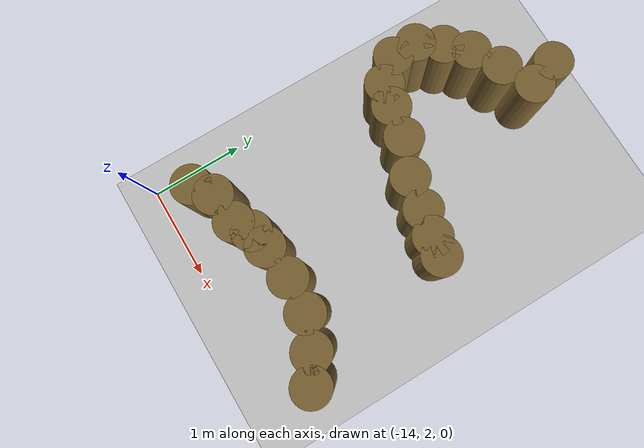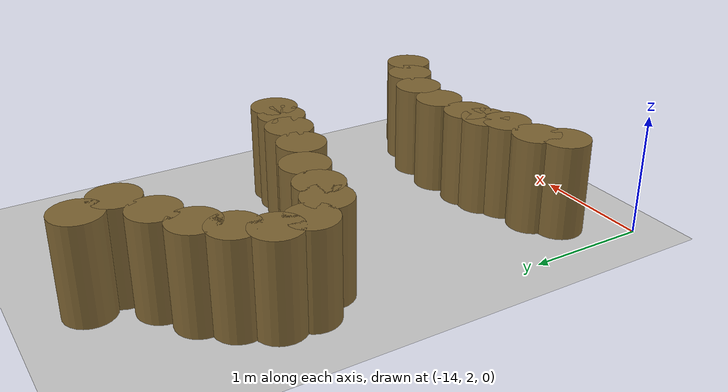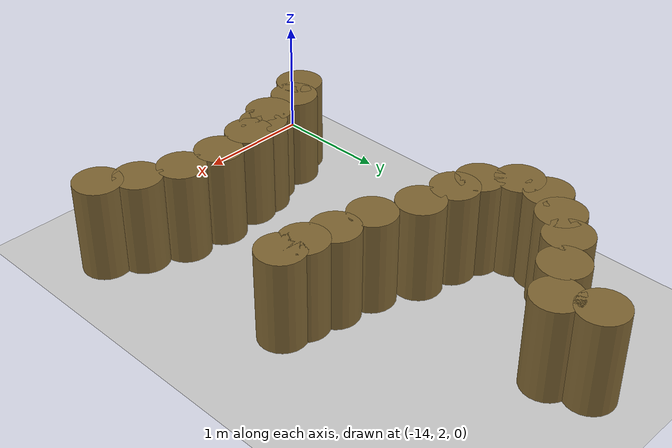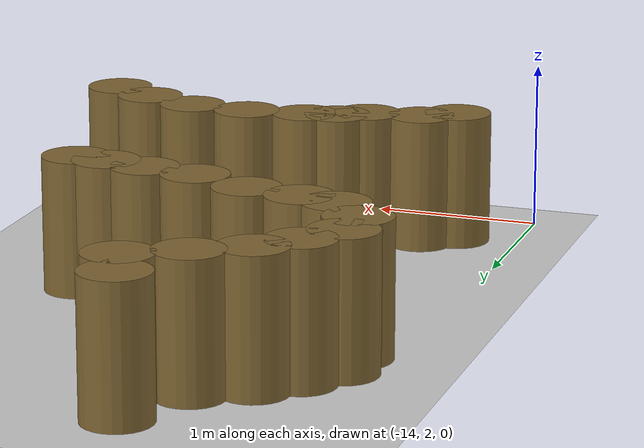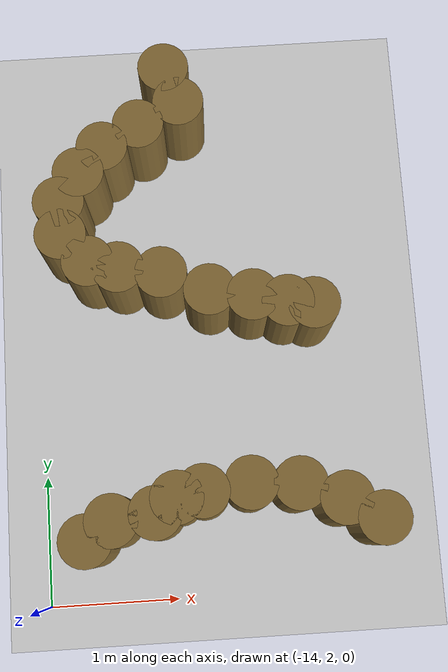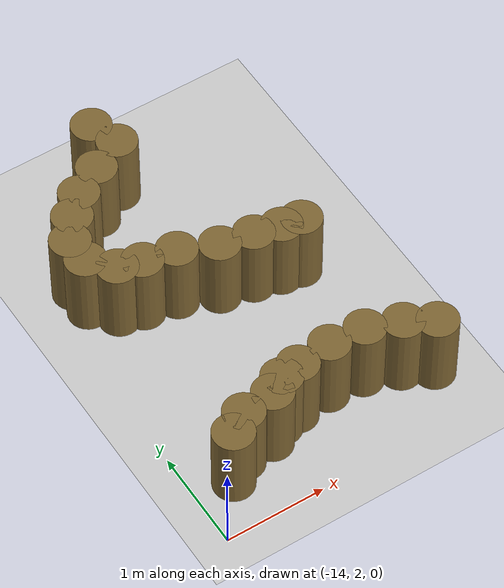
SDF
<sdf version="1.7">
 <world name="default">
  <model name="ground_plane">
   <static>1</static>
   <link name="link">
    <collision name="collision">
     <geometry><plane><normal>0 0 1</normal><size>100 100</size></plane></geometry>
     <surface><friction><ode><mu>100</mu><mu2>50</mu2></ode></friction></surface>
    </collision>
    <visual name="visual">
     <cast_shadows>0</cast_shadows>
     <geometry><plane><normal>0 0 1</normal><size>100 100</size></plane></geometry>
     <material>
      <script><uri>file://media/materials/scripts/gazebo.material</uri><name>Gazebo/Grey</name></script>
     </material>
    </visual>
   </link>
  </model>
  <model name="mini_cylinder_0_clone_0_clone_clone_clone_clone_3_clone_20_clone_18">
   <link name="link">
    <inertial>
     <mass>1</mass>
     <inertia><ixx>0.145833</ixx><ixy>0</ixy><ixz>0</ixz><iyy>0.145833</iyy><iyz>0</iyz><izz>0.125</izz></inertia>
    </inertial>
    <visual name="visual">
     <geometry><cylinder><radius>0.2</radius><length>0.8</length></cylinder></geometry>
     <material>
      <script><name>Gazebo/Grey</name><uri>file://media/materials/scripts/gazebo.material</uri></script>
      <shader type="vertex"><normal_map>__default__</normal_map></shader>
      <ambient>0.5 0.4 0.2 1</ambient>
      <diffuse>0.7 0.7 0.7 1</diffuse>
      <specular>0.01 0.01 0.01 1</specular>
      <emissive>0 0 0 1</emissive>
     </material>
    </visual>
    <collision name="collision">
     <geometry><cylinder><radius>0.2</radius><length>0.8</length></cylinder></geometry>
     <surface>
      <friction>
       <ode><mu>1</mu><mu2>1</mu2><fdir1>0 0 0</fdir1><slip1>0</slip1><slip2>0</slip2></ode>
       <torsional>
        <coefficient>1</coefficient>
        <patch_radius>0</patch_radius>
        <surface_radius>0</surface_radius>
        <use_patch_radius>1</use_patch_radius>
        <ode><slip>0</slip></ode>
       </torsional>
      </friction>
      <bounce><restitution_coefficient>0</restitution_coefficient><threshold>1e+06</threshold></bounce>
      <contact>
       <collide_without_contact>0</collide_without_contact>
       <collide_without_contact_bitmask>1</collide_without_contact_bitmask>
       <collide_bitmask>1</collide_bitmask>
       <ode>
        <soft_cfm>0</soft_cfm>
        <soft_erp>0.2</soft_erp>
        <kp>1e+13</kp>
        <kd>1</kd>
        <max_vel>0.01</max_vel>
        <min_depth>0</min_depth>
       </ode>
       <bullet>
        <split_impulse>1</split_impulse>
        <split_impulse_penetration_threshold>-0.01</split_impulse_penetration_threshold>
        <soft_cfm>0</soft_cfm>
        <soft_erp>0.2</soft_erp>
        <kp>1e+13</kp>
        <kd>1</kd>
       </bullet>
      </contact>
     </surface>
    </collision>
   </link>
   <static>1</static>
   <pose>-11.453 2.5165 0.4 0 -0 0</pose>
  </model>
  <model name="mini_cylinder_0_clone_0_clone_clone_clone_clone_3_clone_20_clone_19">
   <link name="link">
    <inertial>
     <mass>1</mass>
     <inertia><ixx>0.145833</ixx><ixy>0</ixy><ixz>0</ixz><iyy>0.145833</iyy><iyz>0</iyz><izz>0.125</izz></inertia>
    </inertial>
    <visual name="visual">
     <geometry><cylinder><radius>0.2</radius><length>0.8</length></cylinder></geometry>
     <material>
      <script><name>Gazebo/Grey</name><uri>file://media/materials/scripts/gazebo.material</uri></script>
      <shader type="vertex"><normal_map>__default__</normal_map></shader>
      <ambient>0.5 0.4 0.2 1</ambient>
      <diffuse>0.7 0.7 0.7 1</diffuse>
      <specular>0.01 0.01 0.01 1</specular>
      <emissive>0 0 0 1</emissive>
     </material>
    </visual>
    <collision name="collision">
     <geometry><cylinder><radius>0.2</radius><length>0.8</length></cylinder></geometry>
     <surface>
      <friction>
       <ode><mu>1</mu><mu2>1</mu2><fdir1>0 0 0</fdir1><slip1>0</slip1><slip2>0</slip2></ode>
       <torsional>
        <coefficient>1</coefficient>
        <patch_radius>0</patch_radius>
        <surface_radius>0</surface_radius>
        <use_patch_radius>1</use_patch_radius>
        <ode><slip>0</slip></ode>
       </torsional>
      </friction>
      <bounce><restitution_coefficient>0</restitution_coefficient><threshold>1e+06</threshold></bounce>
      <contact>
       <collide_without_contact>0</collide_without_contact>
       <collide_without_contact_bitmask>1</collide_without_contact_bitmask>
       <collide_bitmask>1</collide_bitmask>
       <ode>
        <soft_cfm>0</soft_cfm>
        <soft_erp>0.2</soft_erp>
        <kp>1e+13</kp>
        <kd>1</kd>
        <max_vel>0.01</max_vel>
        <min_depth>0</min_depth>
       </ode>
       <bullet>
        <split_impulse>1</split_impulse>
        <split_impulse_penetration_threshold>-0.01</split_impulse_penetration_threshold>
        <soft_cfm>0</soft_cfm>
        <soft_erp>0.2</soft_erp>
        <kp>1e+13</kp>
        <kd>1</kd>
       </bullet>
      </contact>
     </surface>
    </collision>
   </link>
   <static>1</static>
   <pose>-11.7157 2.67491 0.4 0 -0 0</pose>
  </model>
  <model name="mini_cylinder_0_clone_0_clone_clone_clone_clone_3_clone_20_clone_20">
   <link name="link">
    <inertial>
     <mass>1</mass>
     <inertia><ixx>0.145833</ixx><ixy>0</ixy><ixz>0</ixz><iyy>0.145833</iyy><iyz>0</iyz><izz>0.125</izz></inertia>
    </inertial>
    <visual name="visual">
     <geometry><cylinder><radius>0.2</radius><length>0.8</length></cylinder></geometry>
     <material>
      <script><name>Gazebo/Grey</name><uri>file://media/materials/scripts/gazebo.material</uri></script>
      <shader type="vertex"><normal_map>__default__</normal_map></shader>
      <ambient>0.5 0.4 0.2 1</ambient>
      <diffuse>0.7 0.7 0.7 1</diffuse>
      <specular>0.01 0.01 0.01 1</specular>
      <emissive>0 0 0 1</emissive>
     </material>
    </visual>
    <collision name="collision">
     <geometry><cylinder><radius>0.2</radius><length>0.8</length></cylinder></geometry>
     <surface>
      <friction>
       <ode><mu>1</mu><mu2>1</mu2><fdir1>0 0 0</fdir1><slip1>0</slip1><slip2>0</slip2></ode>
       <torsional>
        <coefficient>1</coefficient>
        <patch_radius>0</patch_radius>
        <surface_radius>0</surface_radius>
        <use_patch_radius>1</use_patch_radius>
        <ode><slip>0</slip></ode>
       </torsional>
      </friction>
      <bounce><restitution_coefficient>0</restitution_coefficient><threshold>1e+06</threshold></bounce>
      <contact>
       <collide_without_contact>0</collide_without_contact>
       <collide_without_contact_bitmask>1</collide_without_contact_bitmask>
       <collide_bitmask>1</collide_bitmask>
       <ode>
        <soft_cfm>0</soft_cfm>
        <soft_erp>0.2</soft_erp>
        <kp>1e+13</kp>
        <kd>1</kd>
        <max_vel>0.01</max_vel>
        <min_depth>0</min_depth>
       </ode>
       <bullet>
        <split_impulse>1</split_impulse>
        <split_impulse_penetration_threshold>-0.01</split_impulse_penetration_threshold>
        <soft_cfm>0</soft_cfm>
        <soft_erp>0.2</soft_erp>
        <kp>1e+13</kp>
        <kd>1</kd>
       </bullet>
      </contact>
     </surface>
    </collision>
   </link>
   <static>1</static>
   <pose>-12.0426 2.79993 0.4 0 -0 0</pose>
  </model>
  <model name="mini_cylinder_0_clone_0_clone_clone_clone_clone_3_clone_20_clone_21">
   <link name="link">
    <inertial>
     <mass>1</mass>
     <inertia><ixx>0.145833</ixx><ixy>0</ixy><ixz>0</ixz><iyy>0.145833</iyy><iyz>0</iyz><izz>0.125</izz></inertia>
    </inertial>
    <visual name="visual">
     <geometry><cylinder><radius>0.2</radius><length>0.8</length></cylinder></geometry>
     <material>
      <script><name>Gazebo/Grey</name><uri>file://media/materials/scripts/gazebo.material</uri></script>
      <shader type="vertex"><normal_map>__default__</normal_map></shader>
      <ambient>0.5 0.4 0.2 1</ambient>
      <diffuse>0.7 0.7 0.7 1</diffuse>
      <specular>0.01 0.01 0.01 1</specular>
      <emissive>0 0 0 1</emissive>
     </material>
    </visual>
    <collision name="collision">
     <geometry><cylinder><radius>0.2</radius><length>0.8</length></cylinder></geometry>
     <surface>
      <friction>
       <ode><mu>1</mu><mu2>1</mu2><fdir1>0 0 0</fdir1><slip1>0</slip1><slip2>0</slip2></ode>
       <torsional>
        <coefficient>1</coefficient>
        <patch_radius>0</patch_radius>
        <surface_radius>0</surface_radius>
        <use_patch_radius>1</use_patch_radius>
        <ode><slip>0</slip></ode>
       </torsional>
      </friction>
      <bounce><restitution_coefficient>0</restitution_coefficient><threshold>1e+06</threshold></bounce>
      <contact>
       <collide_without_contact>0</collide_without_contact>
       <collide_without_contact_bitmask>1</collide_without_contact_bitmask>
       <collide_bitmask>1</collide_bitmask>
       <ode>
        <soft_cfm>0</soft_cfm>
        <soft_erp>0.2</soft_erp>
        <kp>1e+13</kp>
        <kd>1</kd>
        <max_vel>0.01</max_vel>
        <min_depth>0</min_depth>
       </ode>
       <bullet>
        <split_impulse>1</split_impulse>
        <split_impulse_penetration_threshold>-0.01</split_impulse_penetration_threshold>
        <soft_cfm>0</soft_cfm>
        <soft_erp>0.2</soft_erp>
        <kp>1e+13</kp>
        <kd>1</kd>
       </bullet>
      </contact>
     </surface>
    </collision>
   </link>
   <static>1</static>
   <pose>-12.4008 2.82689 0.4 0 -0 0</pose>
  </model>
  <model name="mini_cylinder_0_clone_0_clone_clone_clone_clone_3_clone_20_clone_22">
   <link name="link">
    <inertial>
     <mass>1</mass>
     <inertia><ixx>0.145833</ixx><ixy>0</ixy><ixz>0</ixz><iyy>0.145833</iyy><iyz>0</iyz><izz>0.125</izz></inertia>
    </inertial>
    <visual name="visual">
     <geometry><cylinder><radius>0.2</radius><length>0.8</length></cylinder></geometry>
     <material>
      <script><name>Gazebo/Grey</name><uri>file://media/materials/scripts/gazebo.material</uri></script>
      <shader type="vertex"><normal_map>__default__</normal_map></shader>
      <ambient>0.5 0.4 0.2 1</ambient>
      <diffuse>0.7 0.7 0.7 1</diffuse>
      <specular>0.01 0.01 0.01 1</specular>
      <emissive>0 0 0 1</emissive>
     </material>
    </visual>
    <collision name="collision">
     <geometry><cylinder><radius>0.2</radius><length>0.8</length></cylinder></geometry>
     <surface>
      <friction>
       <ode><mu>1</mu><mu2>1</mu2><fdir1>0 0 0</fdir1><slip1>0</slip1><slip2>0</slip2></ode>
       <torsional>
        <coefficient>1</coefficient>
        <patch_radius>0</patch_radius>
        <surface_radius>0</surface_radius>
        <use_patch_radius>1</use_patch_radius>
        <ode><slip>0</slip></ode>
       </torsional>
      </friction>
      <bounce><restitution_coefficient>0</restitution_coefficient><threshold>1e+06</threshold></bounce>
      <contact>
       <collide_without_contact>0</collide_without_contact>
       <collide_without_contact_bitmask>1</collide_without_contact_bitmask>
       <collide_bitmask>1</collide_bitmask>
       <ode>
        <soft_cfm>0</soft_cfm>
        <soft_erp>0.2</soft_erp>
        <kp>1e+13</kp>
        <kd>1</kd>
        <max_vel>0.01</max_vel>
        <min_depth>0</min_depth>
       </ode>
       <bullet>
        <split_impulse>1</split_impulse>
        <split_impulse_penetration_threshold>-0.01</split_impulse_penetration_threshold>
        <soft_cfm>0</soft_cfm>
        <soft_erp>0.2</soft_erp>
        <kp>1e+13</kp>
        <kd>1</kd>
       </bullet>
      </contact>
     </surface>
    </collision>
   </link>
   <static>1</static>
   <pose>-12.7576 2.7888 0.4 0 -0 0</pose>
  </model>
  <model name="mini_cylinder_0_clone_0_clone_clone_clone_clone_3_clone_20_clone_23">
   <link name="link">
    <inertial>
     <mass>1</mass>
     <inertia><ixx>0.145833</ixx><ixy>0</ixy><ixz>0</ixz><iyy>0.145833</iyy><iyz>0</iyz><izz>0.125</izz></inertia>
    </inertial>
    <visual name="visual">
     <geometry><cylinder><radius>0.2</radius><length>0.8</length></cylinder></geometry>
     <material>
      <script><name>Gazebo/Grey</name><uri>file://media/materials/scripts/gazebo.material</uri></script>
      <shader type="vertex"><normal_map>__default__</normal_map></shader>
      <ambient>0.5 0.4 0.2 1</ambient>
      <diffuse>0.7 0.7 0.7 1</diffuse>
      <specular>0.01 0.01 0.01 1</specular>
      <emissive>0 0 0 1</emissive>
     </material>
    </visual>
    <collision name="collision">
     <geometry><cylinder><radius>0.2</radius><length>0.8</length></cylinder></geometry>
     <surface>
      <friction>
       <ode><mu>1</mu><mu2>1</mu2><fdir1>0 0 0</fdir1><slip1>0</slip1><slip2>0</slip2></ode>
       <torsional>
        <coefficient>1</coefficient>
        <patch_radius>0</patch_radius>
        <surface_radius>0</surface_radius>
        <use_patch_radius>1</use_patch_radius>
        <ode><slip>0</slip></ode>
       </torsional>
      </friction>
      <bounce><restitution_coefficient>0</restitution_coefficient><threshold>1e+06</threshold></bounce>
      <contact>
       <collide_without_contact>0</collide_without_contact>
       <collide_without_contact_bitmask>1</collide_without_contact_bitmask>
       <collide_bitmask>1</collide_bitmask>
       <ode>
        <soft_cfm>0</soft_cfm>
        <soft_erp>0.2</soft_erp>
        <kp>1e+13</kp>
        <kd>1</kd>
        <max_vel>0.01</max_vel>
        <min_depth>0</min_depth>
       </ode>
       <bullet>
        <split_impulse>1</split_impulse>
        <split_impulse_penetration_threshold>-0.01</split_impulse_penetration_threshold>
        <soft_cfm>0</soft_cfm>
        <soft_erp>0.2</soft_erp>
        <kp>1e+13</kp>
        <kd>1</kd>
       </bullet>
      </contact>
     </surface>
    </collision>
   </link>
   <static>1</static>
   <pose>-13.1132 2.65293 0.4 0 -0 0</pose>
  </model>
  <model name="mini_cylinder_0_clone_0_clone_clone_clone_clone_3_clone_20_clone_24">
   <link name="link">
    <inertial>
     <mass>1</mass>
     <inertia><ixx>0.145833</ixx><ixy>0</ixy><ixz>0</ixz><iyy>0.145833</iyy><iyz>0</iyz><izz>0.125</izz></inertia>
    </inertial>
    <visual name="visual">
     <geometry><cylinder><radius>0.2</radius><length>0.8</length></cylinder></geometry>
     <material>
      <script><name>Gazebo/Grey</name><uri>file://media/materials/scripts/gazebo.material</uri></script>
      <shader type="vertex"><normal_map>__default__</normal_map></shader>
      <ambient>0.5 0.4 0.2 1</ambient>
      <diffuse>0.7 0.7 0.7 1</diffuse>
      <specular>0.01 0.01 0.01 1</specular>
      <emissive>0 0 0 1</emissive>
     </material>
    </visual>
    <collision name="collision">
     <geometry><cylinder><radius>0.2</radius><length>0.8</length></cylinder></geometry>
     <surface>
      <friction>
       <ode><mu>1</mu><mu2>1</mu2><fdir1>0 0 0</fdir1><slip1>0</slip1><slip2>0</slip2></ode>
       <torsional>
        <coefficient>1</coefficient>
        <patch_radius>0</patch_radius>
        <surface_radius>0</surface_radius>
        <use_patch_radius>1</use_patch_radius>
        <ode><slip>0</slip></ode>
       </torsional>
      </friction>
      <bounce><restitution_coefficient>0</restitution_coefficient><threshold>1e+06</threshold></bounce>
      <contact>
       <collide_without_contact>0</collide_without_contact>
       <collide_without_contact_bitmask>1</collide_without_contact_bitmask>
       <collide_bitmask>1</collide_bitmask>
       <ode>
        <soft_cfm>0</soft_cfm>
        <soft_erp>0.2</soft_erp>
        <kp>1e+13</kp>
        <kd>1</kd>
        <max_vel>0.01</max_vel>
        <min_depth>0</min_depth>
       </ode>
       <bullet>
        <split_impulse>1</split_impulse>
        <split_impulse_penetration_threshold>-0.01</split_impulse_penetration_threshold>
        <soft_cfm>0</soft_cfm>
        <soft_erp>0.2</soft_erp>
        <kp>1e+13</kp>
        <kd>1</kd>
       </bullet>
      </contact>
     </surface>
    </collision>
   </link>
   <static>1</static>
   <pose>-13.4377 2.61527 0.4 0 -0 0</pose>
  </model>
  <model name="mini_cylinder_0_clone_0_clone_clone_clone_clone_3_clone_20_clone_25">
   <link name="link">
    <inertial>
     <mass>1</mass>
     <inertia><ixx>0.145833</ixx><ixy>0</ixy><ixz>0</ixz><iyy>0.145833</iyy><iyz>0</iyz><izz>0.125</izz></inertia>
    </inertial>
    <visual name="visual">
     <geometry><cylinder><radius>0.2</radius><length>0.8</length></cylinder></geometry>
     <material>
      <script><name>Gazebo/Grey</name><uri>file://media/materials/scripts/gazebo.material</uri></script>
      <shader type="vertex"><normal_map>__default__</normal_map></shader>
      <ambient>0.5 0.4 0.2 1</ambient>
      <diffuse>0.7 0.7 0.7 1</diffuse>
      <specular>0.01 0.01 0.01 1</specular>
      <emissive>0 0 0 1</emissive>
     </material>
    </visual>
    <collision name="collision">
     <geometry><cylinder><radius>0.2</radius><length>0.8</length></cylinder></geometry>
     <surface>
      <friction>
       <ode><mu>1</mu><mu2>1</mu2><fdir1>0 0 0</fdir1><slip1>0</slip1><slip2>0</slip2></ode>
       <torsional>
        <coefficient>1</coefficient>
        <patch_radius>0</patch_radius>
        <surface_radius>0</surface_radius>
        <use_patch_radius>1</use_patch_radius>
        <ode><slip>0</slip></ode>
       </torsional>
      </friction>
      <bounce><restitution_coefficient>0</restitution_coefficient><threshold>1e+06</threshold></bounce>
      <contact>
       <collide_without_contact>0</collide_without_contact>
       <collide_without_contact_bitmask>1</collide_without_contact_bitmask>
       <collide_bitmask>1</collide_bitmask>
       <ode>
        <soft_cfm>0</soft_cfm>
        <soft_erp>0.2</soft_erp>
        <kp>1e+13</kp>
        <kd>1</kd>
        <max_vel>0.01</max_vel>
        <min_depth>0</min_depth>
       </ode>
       <bullet>
        <split_impulse>1</split_impulse>
        <split_impulse_penetration_threshold>-0.01</split_impulse_penetration_threshold>
        <soft_cfm>0</soft_cfm>
        <soft_erp>0.2</soft_erp>
        <kp>1e+13</kp>
        <kd>1</kd>
       </bullet>
      </contact>
     </surface>
    </collision>
   </link>
   <static>1</static>
   <pose>-13.6303 2.482 0.4 0 -0 0</pose>
  </model>
  <model name="mini_cylinder_0_clone_0_clone_clone_clone_clone_3_clone_20_clone_37">
   <link name="link">
    <inertial>
     <mass>1</mass>
     <inertia><ixx>0.145833</ixx><ixy>0</ixy><ixz>0</ixz><iyy>0.145833</iyy><iyz>0</iyz><izz>0.125</izz></inertia>
    </inertial>
    <visual name="visual">
     <geometry><cylinder><radius>0.2</radius><length>0.8</length></cylinder></geometry>
     <material>
      <script><name>Gazebo/Grey</name><uri>file://media/materials/scripts/gazebo.material</uri></script>
      <shader type="vertex"><normal_map>__default__</normal_map></shader>
      <ambient>0.5 0.4 0.2 1</ambient>
      <diffuse>0.7 0.7 0.7 1</diffuse>
      <specular>0.01 0.01 0.01 1</specular>
      <emissive>0 0 0 1</emissive>
     </material>
    </visual>
    <collision name="collision">
     <geometry><cylinder><radius>0.2</radius><length>0.8</length></cylinder></geometry>
     <surface>
      <friction>
       <ode><mu>1</mu><mu2>1</mu2><fdir1>0 0 0</fdir1><slip1>0</slip1><slip2>0</slip2></ode>
       <torsional>
        <coefficient>1</coefficient>
        <patch_radius>0</patch_radius>
        <surface_radius>0</surface_radius>
        <use_patch_radius>1</use_patch_radius>
        <ode><slip>0</slip></ode>
       </torsional>
      </friction>
      <bounce><restitution_coefficient>0</restitution_coefficient><threshold>1e+06</threshold></bounce>
      <contact>
       <collide_without_contact>0</collide_without_contact>
       <collide_without_contact_bitmask>1</collide_without_contact_bitmask>
       <collide_bitmask>1</collide_bitmask>
       <ode>
        <soft_cfm>0</soft_cfm>
        <soft_erp>0.2</soft_erp>
        <kp>1e+13</kp>
        <kd>1</kd>
        <max_vel>0.01</max_vel>
        <min_depth>0</min_depth>
       </ode>
       <bullet>
        <split_impulse>1</split_impulse>
        <split_impulse_penetration_threshold>-0.01</split_impulse_penetration_threshold>
        <soft_cfm>0</soft_cfm>
        <soft_erp>0.2</soft_erp>
        <kp>1e+13</kp>
        <kd>1</kd>
       </bullet>
      </contact>
     </surface>
    </collision>
   </link>
   <static>1</static>
   <pose>-12.9523 2.75298 0.4 0 -0 0</pose>
  </model>
  <model name="mini_cylinder_0_clone_0_clone_clone_clone_clone_3_clone_20_clone_40">
   <link name="link">
    <inertial>
     <mass>1</mass>
     <inertia><ixx>0.145833</ixx><ixy>0</ixy><ixz>0</ixz><iyy>0.145833</iyy><iyz>0</iyz><izz>0.125</izz></inertia>
    </inertial>
    <visual name="visual">
     <geometry><cylinder><radius>0.2</radius><length>0.8</length></cylinder></geometry>
     <material>
      <script><name>Gazebo/Grey</name><uri>file://media/materials/scripts/gazebo.material</uri></script>
      <shader type="vertex"><normal_map>__default__</normal_map></shader>
      <ambient>0.5 0.4 0.2 1</ambient>
      <diffuse>0.7 0.7 0.7 1</diffuse>
      <specular>0.01 0.01 0.01 1</specular>
      <emissive>0 0 0 1</emissive>
     </material>
    </visual>
    <collision name="collision">
     <geometry><cylinder><radius>0.2</radius><length>0.8</length></cylinder></geometry>
     <surface>
      <friction>
       <ode><mu>1</mu><mu2>1</mu2><fdir1>0 0 0</fdir1><slip1>0</slip1><slip2>0</slip2></ode>
       <torsional>
        <coefficient>1</coefficient>
        <patch_radius>0</patch_radius>
        <surface_radius>0</surface_radius>
        <use_patch_radius>1</use_patch_radius>
        <ode><slip>0</slip></ode>
       </torsional>
      </friction>
      <bounce><restitution_coefficient>0</restitution_coefficient><threshold>1e+06</threshold></bounce>
      <contact>
       <collide_without_contact>0</collide_without_contact>
       <collide_without_contact_bitmask>1</collide_without_contact_bitmask>
       <collide_bitmask>1</collide_bitmask>
       <ode>
        <soft_cfm>0</soft_cfm>
        <soft_erp>0.2</soft_erp>
        <kp>1e+13</kp>
        <kd>1</kd>
        <max_vel>0.01</max_vel>
        <min_depth>0</min_depth>
       </ode>
       <bullet>
        <split_impulse>1</split_impulse>
        <split_impulse_penetration_threshold>-0.01</split_impulse_penetration_threshold>
        <soft_cfm>0</soft_cfm>
        <soft_erp>0.2</soft_erp>
        <kp>1e+13</kp>
        <kd>1</kd>
       </bullet>
      </contact>
     </surface>
    </collision>
   </link>
   <static>1</static>
   <pose>-11.8364 4.13701 0.4 0 -0 0</pose>
  </model>
  <model name="mini_cylinder_0_clone_0_clone_clone_clone_clone_3_clone_20_clone_41">
   <link name="link">
    <inertial>
     <mass>1</mass>
     <inertia><ixx>0.145833</ixx><ixy>0</ixy><ixz>0</ixz><iyy>0.145833</iyy><iyz>0</iyz><izz>0.125</izz></inertia>
    </inertial>
    <visual name="visual">
     <geometry><cylinder><radius>0.2</radius><length>0.8</length></cylinder></geometry>
     <material>
      <script><name>Gazebo/Grey</name><uri>file://media/materials/scripts/gazebo.material</uri></script>
      <shader type="vertex"><normal_map>__default__</normal_map></shader>
      <ambient>0.5 0.4 0.2 1</ambient>
      <diffuse>0.7 0.7 0.7 1</diffuse>
      <specular>0.01 0.01 0.01 1</specular>
      <emissive>0 0 0 1</emissive>
     </material>
    </visual>
    <collision name="collision">
     <geometry><cylinder><radius>0.2</radius><length>0.8</length></cylinder></geometry>
     <surface>
      <friction>
       <ode><mu>1</mu><mu2>1</mu2><fdir1>0 0 0</fdir1><slip1>0</slip1><slip2>0</slip2></ode>
       <torsional>
        <coefficient>1</coefficient>
        <patch_radius>0</patch_radius>
        <surface_radius>0</surface_radius>
        <use_patch_radius>1</use_patch_radius>
        <ode><slip>0</slip></ode>
       </torsional>
      </friction>
      <bounce><restitution_coefficient>0</restitution_coefficient><threshold>1e+06</threshold></bounce>
      <contact>
       <collide_without_contact>0</collide_without_contact>
       <collide_without_contact_bitmask>1</collide_without_contact_bitmask>
       <collide_bitmask>1</collide_bitmask>
       <ode>
        <soft_cfm>0</soft_cfm>
        <soft_erp>0.2</soft_erp>
        <kp>1e+13</kp>
        <kd>1</kd>
        <max_vel>0.01</max_vel>
        <min_depth>0</min_depth>
       </ode>
       <bullet>
        <split_impulse>1</split_impulse>
        <split_impulse_penetration_threshold>-0.01</split_impulse_penetration_threshold>
        <soft_cfm>0</soft_cfm>
        <soft_erp>0.2</soft_erp>
        <kp>1e+13</kp>
        <kd>1</kd>
       </bullet>
      </contact>
     </surface>
    </collision>
   </link>
   <static>1</static>
   <pose>-12.0326 4.16648 0.4 0 -0 0</pose>
  </model>
  <model name="mini_cylinder_0_clone_0_clone_clone_clone_clone_3_clone_20_clone_42">
   <link name="link">
    <inertial>
     <mass>1</mass>
     <inertia><ixx>0.145833</ixx><ixy>0</ixy><ixz>0</ixz><iyy>0.145833</iyy><iyz>0</iyz><izz>0.125</izz></inertia>
    </inertial>
    <visual name="visual">
     <geometry><cylinder><radius>0.2</radius><length>0.8</length></cylinder></geometry>
     <material>
      <script><name>Gazebo/Grey</name><uri>file://media/materials/scripts/gazebo.material</uri></script>
      <shader type="vertex"><normal_map>__default__</normal_map></shader>
      <ambient>0.5 0.4 0.2 1</ambient>
      <diffuse>0.7 0.7 0.7 1</diffuse>
      <specular>0.01 0.01 0.01 1</specular>
      <emissive>0 0 0 1</emissive>
     </material>
    </visual>
    <collision name="collision">
     <geometry><cylinder><radius>0.2</radius><length>0.8</length></cylinder></geometry>
     <surface>
      <friction>
       <ode><mu>1</mu><mu2>1</mu2><fdir1>0 0 0</fdir1><slip1>0</slip1><slip2>0</slip2></ode>
       <torsional>
        <coefficient>1</coefficient>
        <patch_radius>0</patch_radius>
        <surface_radius>0</surface_radius>
        <use_patch_radius>1</use_patch_radius>
        <ode><slip>0</slip></ode>
       </torsional>
      </friction>
      <bounce><restitution_coefficient>0</restitution_coefficient><threshold>1e+06</threshold></bounce>
      <contact>
       <collide_without_contact>0</collide_without_contact>
       <collide_without_contact_bitmask>1</collide_without_contact_bitmask>
       <collide_bitmask>1</collide_bitmask>
       <ode>
        <soft_cfm>0</soft_cfm>
        <soft_erp>0.2</soft_erp>
        <kp>1e+13</kp>
        <kd>1</kd>
        <max_vel>0.01</max_vel>
        <min_depth>0</min_depth>
       </ode>
       <bullet>
        <split_impulse>1</split_impulse>
        <split_impulse_penetration_threshold>-0.01</split_impulse_penetration_threshold>
        <soft_cfm>0</soft_cfm>
        <soft_erp>0.2</soft_erp>
        <kp>1e+13</kp>
        <kd>1</kd>
       </bullet>
      </contact>
     </surface>
    </collision>
   </link>
   <static>1</static>
   <pose>-12.2932 4.2275 0.4 0 -0 0</pose>
  </model>
  <model name="mini_cylinder_0_clone_0_clone_clone_clone_clone_3_clone_20_clone_43">
   <link name="link">
    <inertial>
     <mass>1</mass>
     <inertia><ixx>0.145833</ixx><ixy>0</ixy><ixz>0</ixz><iyy>0.145833</iyy><iyz>0</iyz><izz>0.125</izz></inertia>
    </inertial>
    <visual name="visual">
     <geometry><cylinder><radius>0.2</radius><length>0.8</length></cylinder></geometry>
     <material>
      <script><name>Gazebo/Grey</name><uri>file://media/materials/scripts/gazebo.material</uri></script>
      <shader type="vertex"><normal_map>__default__</normal_map></shader>
      <ambient>0.5 0.4 0.2 1</ambient>
      <diffuse>0.7 0.7 0.7 1</diffuse>
      <specular>0.01 0.01 0.01 1</specular>
      <emissive>0 0 0 1</emissive>
     </material>
    </visual>
    <collision name="collision">
     <geometry><cylinder><radius>0.2</radius><length>0.8</length></cylinder></geometry>
     <surface>
      <friction>
       <ode><mu>1</mu><mu2>1</mu2><fdir1>0 0 0</fdir1><slip1>0</slip1><slip2>0</slip2></ode>
       <torsional>
        <coefficient>1</coefficient>
        <patch_radius>0</patch_radius>
        <surface_radius>0</surface_radius>
        <use_patch_radius>1</use_patch_radius>
        <ode><slip>0</slip></ode>
       </torsional>
      </friction>
      <bounce><restitution_coefficient>0</restitution_coefficient><threshold>1e+06</threshold></bounce>
      <contact>
       <collide_without_contact>0</collide_without_contact>
       <collide_without_contact_bitmask>1</collide_without_contact_bitmask>
       <collide_bitmask>1</collide_bitmask>
       <ode>
        <soft_cfm>0</soft_cfm>
        <soft_erp>0.2</soft_erp>
        <kp>1e+13</kp>
        <kd>1</kd>
        <max_vel>0.01</max_vel>
        <min_depth>0</min_depth>
       </ode>
       <bullet>
        <split_impulse>1</split_impulse>
        <split_impulse_penetration_threshold>-0.01</split_impulse_penetration_threshold>
        <soft_cfm>0</soft_cfm>
        <soft_erp>0.2</soft_erp>
        <kp>1e+13</kp>
        <kd>1</kd>
       </bullet>
      </contact>
     </surface>
    </collision>
   </link>
   <static>1</static>
   <pose>-12.6192 4.28741 0.4 0 -0 0</pose>
  </model>
  <model name="mini_cylinder_0_clone_0_clone_clone_clone_clone_3_clone_20_clone_44">
   <link name="link">
    <inertial>
     <mass>1</mass>
     <inertia><ixx>0.145833</ixx><ixy>0</ixy><ixz>0</ixz><iyy>0.145833</iyy><iyz>0</iyz><izz>0.125</izz></inertia>
    </inertial>
    <visual name="visual">
     <geometry><cylinder><radius>0.2</radius><length>0.8</length></cylinder></geometry>
     <material>
      <script><name>Gazebo/Grey</name><uri>file://media/materials/scripts/gazebo.material</uri></script>
      <shader type="vertex"><normal_map>__default__</normal_map></shader>
      <ambient>0.5 0.4 0.2 1</ambient>
      <diffuse>0.7 0.7 0.7 1</diffuse>
      <specular>0.01 0.01 0.01 1</specular>
      <emissive>0 0 0 1</emissive>
     </material>
    </visual>
    <collision name="collision">
     <geometry><cylinder><radius>0.2</radius><length>0.8</length></cylinder></geometry>
     <surface>
      <friction>
       <ode><mu>1</mu><mu2>1</mu2><fdir1>0 0 0</fdir1><slip1>0</slip1><slip2>0</slip2></ode>
       <torsional>
        <coefficient>1</coefficient>
        <patch_radius>0</patch_radius>
        <surface_radius>0</surface_radius>
        <use_patch_radius>1</use_patch_radius>
        <ode><slip>0</slip></ode>
       </torsional>
      </friction>
      <bounce><restitution_coefficient>0</restitution_coefficient><threshold>1e+06</threshold></bounce>
      <contact>
       <collide_without_contact>0</collide_without_contact>
       <collide_without_contact_bitmask>1</collide_without_contact_bitmask>
       <collide_bitmask>1</collide_bitmask>
       <ode>
        <soft_cfm>0</soft_cfm>
        <soft_erp>0.2</soft_erp>
        <kp>1e+13</kp>
        <kd>1</kd>
        <max_vel>0.01</max_vel>
        <min_depth>0</min_depth>
       </ode>
       <bullet>
        <split_impulse>1</split_impulse>
        <split_impulse_penetration_threshold>-0.01</split_impulse_penetration_threshold>
        <soft_cfm>0</soft_cfm>
        <soft_erp>0.2</soft_erp>
        <kp>1e+13</kp>
        <kd>1</kd>
       </bullet>
      </contact>
     </surface>
    </collision>
   </link>
   <static>1</static>
   <pose>-12.9796 4.44444 0.4 0 -0 0</pose>
  </model>
  <model name="mini_cylinder_0_clone_0_clone_clone_clone_clone_3_clone_20_clone_45">
   <link name="link">
    <inertial>
     <mass>1</mass>
     <inertia><ixx>0.145833</ixx><ixy>0</ixy><ixz>0</ixz><iyy>0.145833</iyy><iyz>0</iyz><izz>0.125</izz></inertia>
    </inertial>
    <visual name="visual">
     <geometry><cylinder><radius>0.2</radius><length>0.8</length></cylinder></geometry>
     <material>
      <script><name>Gazebo/Grey</name><uri>file://media/materials/scripts/gazebo.material</uri></script>
      <shader type="vertex"><normal_map>__default__</normal_map></shader>
      <ambient>0.5 0.4 0.2 1</ambient>
      <diffuse>0.7 0.7 0.7 1</diffuse>
      <specular>0.01 0.01 0.01 1</specular>
      <emissive>0 0 0 1</emissive>
     </material>
    </visual>
    <collision name="collision">
     <geometry><cylinder><radius>0.2</radius><length>0.8</length></cylinder></geometry>
     <surface>
      <friction>
       <ode><mu>1</mu><mu2>1</mu2><fdir1>0 0 0</fdir1><slip1>0</slip1><slip2>0</slip2></ode>
       <torsional>
        <coefficient>1</coefficient>
        <patch_radius>0</patch_radius>
        <surface_radius>0</surface_radius>
        <use_patch_radius>1</use_patch_radius>
        <ode><slip>0</slip></ode>
       </torsional>
      </friction>
      <bounce><restitution_coefficient>0</restitution_coefficient><threshold>1e+06</threshold></bounce>
      <contact>
       <collide_without_contact>0</collide_without_contact>
       <collide_without_contact_bitmask>1</collide_without_contact_bitmask>
       <collide_bitmask>1</collide_bitmask>
       <ode>
        <soft_cfm>0</soft_cfm>
        <soft_erp>0.2</soft_erp>
        <kp>1e+13</kp>
        <kd>1</kd>
        <max_vel>0.01</max_vel>
        <min_depth>0</min_depth>
       </ode>
       <bullet>
        <split_impulse>1</split_impulse>
        <split_impulse_penetration_threshold>-0.01</split_impulse_penetration_threshold>
        <soft_cfm>0</soft_cfm>
        <soft_erp>0.2</soft_erp>
        <kp>1e+13</kp>
        <kd>1</kd>
       </bullet>
      </contact>
     </surface>
    </collision>
   </link>
   <static>1</static>
   <pose>-13.3056 4.50446 0.4 0 -0 0</pose>
  </model>
  <model name="mini_cylinder_0_clone_0_clone_clone_clone_clone_3_clone_20_clone_46">
   <link name="link">
    <inertial>
     <mass>1</mass>
     <inertia><ixx>0.145833</ixx><ixy>0</ixy><ixz>0</ixz><iyy>0.145833</iyy><iyz>0</iyz><izz>0.125</izz></inertia>
    </inertial>
    <visual name="visual">
     <geometry><cylinder><radius>0.2</radius><length>0.8</length></cylinder></geometry>
     <material>
      <script><name>Gazebo/Grey</name><uri>file://media/materials/scripts/gazebo.material</uri></script>
      <shader type="vertex"><normal_map>__default__</normal_map></shader>
      <ambient>0.5 0.4 0.2 1</ambient>
      <diffuse>0.7 0.7 0.7 1</diffuse>
      <specular>0.01 0.01 0.01 1</specular>
      <emissive>0 0 0 1</emissive>
     </material>
    </visual>
    <collision name="collision">
     <geometry><cylinder><radius>0.2</radius><length>0.8</length></cylinder></geometry>
     <surface>
      <friction>
       <ode><mu>1</mu><mu2>1</mu2><fdir1>0 0 0</fdir1><slip1>0</slip1><slip2>0</slip2></ode>
       <torsional>
        <coefficient>1</coefficient>
        <patch_radius>0</patch_radius>
        <surface_radius>0</surface_radius>
        <use_patch_radius>1</use_patch_radius>
        <ode><slip>0</slip></ode>
       </torsional>
      </friction>
      <bounce><restitution_coefficient>0</restitution_coefficient><threshold>1e+06</threshold></bounce>
      <contact>
       <collide_without_contact>0</collide_without_contact>
       <collide_without_contact_bitmask>1</collide_without_contact_bitmask>
       <collide_bitmask>1</collide_bitmask>
       <ode>
        <soft_cfm>0</soft_cfm>
        <soft_erp>0.2</soft_erp>
        <kp>1e+13</kp>
        <kd>1</kd>
        <max_vel>0.01</max_vel>
        <min_depth>0</min_depth>
       </ode>
       <bullet>
        <split_impulse>1</split_impulse>
        <split_impulse_penetration_threshold>-0.01</split_impulse_penetration_threshold>
        <soft_cfm>0</soft_cfm>
        <soft_erp>0.2</soft_erp>
        <kp>1e+13</kp>
        <kd>1</kd>
       </bullet>
      </contact>
     </surface>
    </collision>
   </link>
   <static>1</static>
   <pose>-13.534 4.56588 0.4 0 -0 0</pose>
  </model>
  <model name="mini_cylinder_0_clone_0_clone_clone_clone_clone_3_clone_20_clone_47">
   <link name="link">
    <inertial>
     <mass>1</mass>
     <inertia><ixx>0.145833</ixx><ixy>0</ixy><ixz>0</ixz><iyy>0.145833</iyy><iyz>0</iyz><izz>0.125</izz></inertia>
    </inertial>
    <visual name="visual">
     <geometry><cylinder><radius>0.2</radius><length>0.8</length></cylinder></geometry>
     <material>
      <script><name>Gazebo/Grey</name><uri>file://media/materials/scripts/gazebo.material</uri></script>
      <shader type="vertex"><normal_map>__default__</normal_map></shader>
      <ambient>0.5 0.4 0.2 1</ambient>
      <diffuse>0.7 0.7 0.7 1</diffuse>
      <specular>0.01 0.01 0.01 1</specular>
      <emissive>0 0 0 1</emissive>
     </material>
    </visual>
    <collision name="collision">
     <geometry><cylinder><radius>0.2</radius><length>0.8</length></cylinder></geometry>
     <surface>
      <friction>
       <ode><mu>1</mu><mu2>1</mu2><fdir1>0 0 0</fdir1><slip1>0</slip1><slip2>0</slip2></ode>
       <torsional>
        <coefficient>1</coefficient>
        <patch_radius>0</patch_radius>
        <surface_radius>0</surface_radius>
        <use_patch_radius>1</use_patch_radius>
        <ode><slip>0</slip></ode>
       </torsional>
      </friction>
      <bounce><restitution_coefficient>0</restitution_coefficient><threshold>1e+06</threshold></bounce>
      <contact>
       <collide_without_contact>0</collide_without_contact>
       <collide_without_contact_bitmask>1</collide_without_contact_bitmask>
       <collide_bitmask>1</collide_bitmask>
       <ode>
        <soft_cfm>0</soft_cfm>
        <soft_erp>0.2</soft_erp>
        <kp>1e+13</kp>
        <kd>1</kd>
        <max_vel>0.01</max_vel>
        <min_depth>0</min_depth>
       </ode>
       <bullet>
        <split_impulse>1</split_impulse>
        <split_impulse_penetration_threshold>-0.01</split_impulse_penetration_threshold>
        <soft_cfm>0</soft_cfm>
        <soft_erp>0.2</soft_erp>
        <kp>1e+13</kp>
        <kd>1</kd>
       </bullet>
      </contact>
     </surface>
    </collision>
   </link>
   <static>1</static>
   <pose>-13.7328 4.79047 0.4 0 -0 0</pose>
  </model>
  <model name="mini_cylinder_0_clone_0_clone_clone_clone_clone_3_clone_20_clone_48">
   <link name="link">
    <inertial>
     <mass>1</mass>
     <inertia><ixx>0.145833</ixx><ixy>0</ixy><ixz>0</ixz><iyy>0.145833</iyy><iyz>0</iyz><izz>0.125</izz></inertia>
    </inertial>
    <visual name="visual">
     <geometry><cylinder><radius>0.2</radius><length>0.8</length></cylinder></geometry>
     <material>
      <script><name>Gazebo/Grey</name><uri>file://media/materials/scripts/gazebo.material</uri></script>
      <shader type="vertex"><normal_map>__default__</normal_map></shader>
      <ambient>0.5 0.4 0.2 1</ambient>
      <diffuse>0.7 0.7 0.7 1</diffuse>
      <specular>0.01 0.01 0.01 1</specular>
      <emissive>0 0 0 1</emissive>
     </material>
    </visual>
    <collision name="collision">
     <geometry><cylinder><radius>0.2</radius><length>0.8</length></cylinder></geometry>
     <surface>
      <friction>
       <ode><mu>1</mu><mu2>1</mu2><fdir1>0 0 0</fdir1><slip1>0</slip1><slip2>0</slip2></ode>
       <torsional>
        <coefficient>1</coefficient>
        <patch_radius>0</patch_radius>
        <surface_radius>0</surface_radius>
        <use_patch_radius>1</use_patch_radius>
        <ode><slip>0</slip></ode>
       </torsional>
      </friction>
      <bounce><restitution_coefficient>0</restitution_coefficient><threshold>1e+06</threshold></bounce>
      <contact>
       <collide_without_contact>0</collide_without_contact>
       <collide_without_contact_bitmask>1</collide_without_contact_bitmask>
       <collide_bitmask>1</collide_bitmask>
       <ode>
        <soft_cfm>0</soft_cfm>
        <soft_erp>0.2</soft_erp>
        <kp>1e+13</kp>
        <kd>1</kd>
        <max_vel>0.01</max_vel>
        <min_depth>0</min_depth>
       </ode>
       <bullet>
        <split_impulse>1</split_impulse>
        <split_impulse_penetration_threshold>-0.01</split_impulse_penetration_threshold>
        <soft_cfm>0</soft_cfm>
        <soft_erp>0.2</soft_erp>
        <kp>1e+13</kp>
        <kd>1</kd>
       </bullet>
      </contact>
     </surface>
    </collision>
   </link>
   <static>1</static>
   <pose>-13.7376 5.05056 0.4 0 -0 0</pose>
  </model>
  <model name="mini_cylinder_0_clone_0_clone_clone_clone_clone_3_clone_20_clone_49">
   <link name="link">
    <inertial>
     <mass>1</mass>
     <inertia><ixx>0.145833</ixx><ixy>0</ixy><ixz>0</ixz><iyy>0.145833</iyy><iyz>0</iyz><izz>0.125</izz></inertia>
    </inertial>
    <visual name="visual">
     <geometry><cylinder><radius>0.2</radius><length>0.8</length></cylinder></geometry>
     <material>
      <script><name>Gazebo/Grey</name><uri>file://media/materials/scripts/gazebo.material</uri></script>
      <shader type="vertex"><normal_map>__default__</normal_map></shader>
      <ambient>0.5 0.4 0.2 1</ambient>
      <diffuse>0.7 0.7 0.7 1</diffuse>
      <specular>0.01 0.01 0.01 1</specular>
      <emissive>0 0 0 1</emissive>
     </material>
    </visual>
    <collision name="collision">
     <geometry><cylinder><radius>0.2</radius><length>0.8</length></cylinder></geometry>
     <surface>
      <friction>
       <ode><mu>1</mu><mu2>1</mu2><fdir1>0 0 0</fdir1><slip1>0</slip1><slip2>0</slip2></ode>
       <torsional>
        <coefficient>1</coefficient>
        <patch_radius>0</patch_radius>
        <surface_radius>0</surface_radius>
        <use_patch_radius>1</use_patch_radius>
        <ode><slip>0</slip></ode>
       </torsional>
      </friction>
      <bounce><restitution_coefficient>0</restitution_coefficient><threshold>1e+06</threshold></bounce>
      <contact>
       <collide_without_contact>0</collide_without_contact>
       <collide_without_contact_bitmask>1</collide_without_contact_bitmask>
       <collide_bitmask>1</collide_bitmask>
       <ode>
        <soft_cfm>0</soft_cfm>
        <soft_erp>0.2</soft_erp>
        <kp>1e+13</kp>
        <kd>1</kd>
        <max_vel>0.01</max_vel>
        <min_depth>0</min_depth>
       </ode>
       <bullet>
        <split_impulse>1</split_impulse>
        <split_impulse_penetration_threshold>-0.01</split_impulse_penetration_threshold>
        <soft_cfm>0</soft_cfm>
        <soft_erp>0.2</soft_erp>
        <kp>1e+13</kp>
        <kd>1</kd>
       </bullet>
      </contact>
     </surface>
    </collision>
   </link>
   <static>1</static>
   <pose>-13.5781 5.28069 0.4 0 -0 0</pose>
  </model>
  <model name="mini_cylinder_0_clone_0_clone_clone_clone_clone_3_clone_20_clone_50">
   <link name="link">
    <inertial>
     <mass>1</mass>
     <inertia><ixx>0.145833</ixx><ixy>0</ixy><ixz>0</ixz><iyy>0.145833</iyy><iyz>0</iyz><izz>0.125</izz></inertia>
    </inertial>
    <visual name="visual">
     <geometry><cylinder><radius>0.2</radius><length>0.8</length></cylinder></geometry>
     <material>
      <script><name>Gazebo/Grey</name><uri>file://media/materials/scripts/gazebo.material</uri></script>
      <shader type="vertex"><normal_map>__default__</normal_map></shader>
      <ambient>0.5 0.4 0.2 1</ambient>
      <diffuse>0.7 0.7 0.7 1</diffuse>
      <specular>0.01 0.01 0.01 1</specular>
      <emissive>0 0 0 1</emissive>
     </material>
    </visual>
    <collision name="collision">
     <geometry><cylinder><radius>0.2</radius><length>0.8</length></cylinder></geometry>
     <surface>
      <friction>
       <ode><mu>1</mu><mu2>1</mu2><fdir1>0 0 0</fdir1><slip1>0</slip1><slip2>0</slip2></ode>
       <torsional>
        <coefficient>1</coefficient>
        <patch_radius>0</patch_radius>
        <surface_radius>0</surface_radius>
        <use_patch_radius>1</use_patch_radius>
        <ode><slip>0</slip></ode>
       </torsional>
      </friction>
      <bounce><restitution_coefficient>0</restitution_coefficient><threshold>1e+06</threshold></bounce>
      <contact>
       <collide_without_contact>0</collide_without_contact>
       <collide_without_contact_bitmask>1</collide_without_contact_bitmask>
       <collide_bitmask>1</collide_bitmask>
       <ode>
        <soft_cfm>0</soft_cfm>
        <soft_erp>0.2</soft_erp>
        <kp>1e+13</kp>
        <kd>1</kd>
        <max_vel>0.01</max_vel>
        <min_depth>0</min_depth>
       </ode>
       <bullet>
        <split_impulse>1</split_impulse>
        <split_impulse_penetration_threshold>-0.01</split_impulse_penetration_threshold>
        <soft_cfm>0</soft_cfm>
        <soft_erp>0.2</soft_erp>
        <kp>1e+13</kp>
        <kd>1</kd>
       </bullet>
      </contact>
     </surface>
    </collision>
   </link>
   <static>1</static>
   <pose>-13.3864 5.47905 0.4 0 -0 0</pose>
  </model>
  <model name="mini_cylinder_0_clone_0_clone_clone_clone_clone_3_clone_20_clone_51">
   <link name="link">
    <inertial>
     <mass>1</mass>
     <inertia><ixx>0.145833</ixx><ixy>0</ixy><ixz>0</ixz><iyy>0.145833</iyy><iyz>0</iyz><izz>0.125</izz></inertia>
    </inertial>
    <visual name="visual">
     <geometry><cylinder><radius>0.2</radius><length>0.8</length></cylinder></geometry>
     <material>
      <script><name>Gazebo/Grey</name><uri>file://media/materials/scripts/gazebo.material</uri></script>
      <shader type="vertex"><normal_map>__default__</normal_map></shader>
      <ambient>0.5 0.4 0.2 1</ambient>
      <diffuse>0.7 0.7 0.7 1</diffuse>
      <specular>0.01 0.01 0.01 1</specular>
      <emissive>0 0 0 1</emissive>
     </material>
    </visual>
    <collision name="collision">
     <geometry><cylinder><radius>0.2</radius><length>0.8</length></cylinder></geometry>
     <surface>
      <friction>
       <ode><mu>1</mu><mu2>1</mu2><fdir1>0 0 0</fdir1><slip1>0</slip1><slip2>0</slip2></ode>
       <torsional>
        <coefficient>1</coefficient>
        <patch_radius>0</patch_radius>
        <surface_radius>0</surface_radius>
        <use_patch_radius>1</use_patch_radius>
        <ode><slip>0</slip></ode>
       </torsional>
      </friction>
      <bounce><restitution_coefficient>0</restitution_coefficient><threshold>1e+06</threshold></bounce>
      <contact>
       <collide_without_contact>0</collide_without_contact>
       <collide_without_contact_bitmask>1</collide_without_contact_bitmask>
       <collide_bitmask>1</collide_bitmask>
       <ode>
        <soft_cfm>0</soft_cfm>
        <soft_erp>0.2</soft_erp>
        <kp>1e+13</kp>
        <kd>1</kd>
        <max_vel>0.01</max_vel>
        <min_depth>0</min_depth>
       </ode>
       <bullet>
        <split_impulse>1</split_impulse>
        <split_impulse_penetration_threshold>-0.01</split_impulse_penetration_threshold>
        <soft_cfm>0</soft_cfm>
        <soft_erp>0.2</soft_erp>
        <kp>1e+13</kp>
        <kd>1</kd>
       </bullet>
      </contact>
     </surface>
    </collision>
   </link>
   <static>1</static>
   <pose>-13.0966 5.64671 0.4 0 -0 0</pose>
  </model>
  <model name="mini_cylinder_0_clone_0_clone_clone_clone_clone_3_clone_20_clone_52">
   <link name="link">
    <inertial>
     <mass>1</mass>
     <inertia><ixx>0.145833</ixx><ixy>0</ixy><ixz>0</ixz><iyy>0.145833</iyy><iyz>0</iyz><izz>0.125</izz></inertia>
    </inertial>
    <visual name="visual">
     <geometry><cylinder><radius>0.2</radius><length>0.8</length></cylinder></geometry>
     <material>
      <script><name>Gazebo/Grey</name><uri>file://media/materials/scripts/gazebo.material</uri></script>
      <shader type="vertex"><normal_map>__default__</normal_map></shader>
      <ambient>0.5 0.4 0.2 1</ambient>
      <diffuse>0.7 0.7 0.7 1</diffuse>
      <specular>0.01 0.01 0.01 1</specular>
      <emissive>0 0 0 1</emissive>
     </material>
    </visual>
    <collision name="collision">
     <geometry><cylinder><radius>0.2</radius><length>0.8</length></cylinder></geometry>
     <surface>
      <friction>
       <ode><mu>1</mu><mu2>1</mu2><fdir1>0 0 0</fdir1><slip1>0</slip1><slip2>0</slip2></ode>
       <torsional>
        <coefficient>1</coefficient>
        <patch_radius>0</patch_radius>
        <surface_radius>0</surface_radius>
        <use_patch_radius>1</use_patch_radius>
        <ode><slip>0</slip></ode>
       </torsional>
      </friction>
      <bounce><restitution_coefficient>0</restitution_coefficient><threshold>1e+06</threshold></bounce>
      <contact>
       <collide_without_contact>0</collide_without_contact>
       <collide_without_contact_bitmask>1</collide_without_contact_bitmask>
       <collide_bitmask>1</collide_bitmask>
       <ode>
        <soft_cfm>0</soft_cfm>
        <soft_erp>0.2</soft_erp>
        <kp>1e+13</kp>
        <kd>1</kd>
        <max_vel>0.01</max_vel>
        <min_depth>0</min_depth>
       </ode>
       <bullet>
        <split_impulse>1</split_impulse>
        <split_impulse_penetration_threshold>-0.01</split_impulse_penetration_threshold>
        <soft_cfm>0</soft_cfm>
        <soft_erp>0.2</soft_erp>
        <kp>1e+13</kp>
        <kd>1</kd>
       </bullet>
      </contact>
     </surface>
    </collision>
   </link>
   <static>1</static>
   <pose>-12.7744 5.81436 0.4 0 -0 0</pose>
  </model>
  <model name="mini_cylinder_0_clone_0_clone_clone_clone_clone_3_clone_20_clone_53">
   <link name="link">
    <inertial>
     <mass>1</mass>
     <inertia><ixx>0.145833</ixx><ixy>0</ixy><ixz>0</ixz><iyy>0.145833</iyy><iyz>0</iyz><izz>0.125</izz></inertia>
    </inertial>
    <visual name="visual">
     <geometry><cylinder><radius>0.2</radius><length>0.8</length></cylinder></geometry>
     <material>
      <script><name>Gazebo/Grey</name><uri>file://media/materials/scripts/gazebo.material</uri></script>
      <shader type="vertex"><normal_map>__default__</normal_map></shader>
      <ambient>0.5 0.4 0.2 1</ambient>
      <diffuse>0.7 0.7 0.7 1</diffuse>
      <specular>0.01 0.01 0.01 1</specular>
      <emissive>0 0 0 1</emissive>
     </material>
    </visual>
    <collision name="collision">
     <geometry><cylinder><radius>0.2</radius><length>0.8</length></cylinder></geometry>
     <surface>
      <friction>
       <ode><mu>1</mu><mu2>1</mu2><fdir1>0 0 0</fdir1><slip1>0</slip1><slip2>0</slip2></ode>
       <torsional>
        <coefficient>1</coefficient>
        <patch_radius>0</patch_radius>
        <surface_radius>0</surface_radius>
        <use_patch_radius>1</use_patch_radius>
        <ode><slip>0</slip></ode>
       </torsional>
      </friction>
      <bounce><restitution_coefficient>0</restitution_coefficient><threshold>1e+06</threshold></bounce>
      <contact>
       <collide_without_contact>0</collide_without_contact>
       <collide_without_contact_bitmask>1</collide_without_contact_bitmask>
       <collide_bitmask>1</collide_bitmask>
       <ode>
        <soft_cfm>0</soft_cfm>
        <soft_erp>0.2</soft_erp>
        <kp>1e+13</kp>
        <kd>1</kd>
        <max_vel>0.01</max_vel>
        <min_depth>0</min_depth>
       </ode>
       <bullet>
        <split_impulse>1</split_impulse>
        <split_impulse_penetration_threshold>-0.01</split_impulse_penetration_threshold>
        <soft_cfm>0</soft_cfm>
        <soft_erp>0.2</soft_erp>
        <kp>1e+13</kp>
        <kd>1</kd>
       </bullet>
      </contact>
     </surface>
    </collision>
   </link>
   <static>1</static>
   <pose>-12.8762 6.10548 0.4 0 -0 0</pose>
  </model>
 </world>
</sdf>
